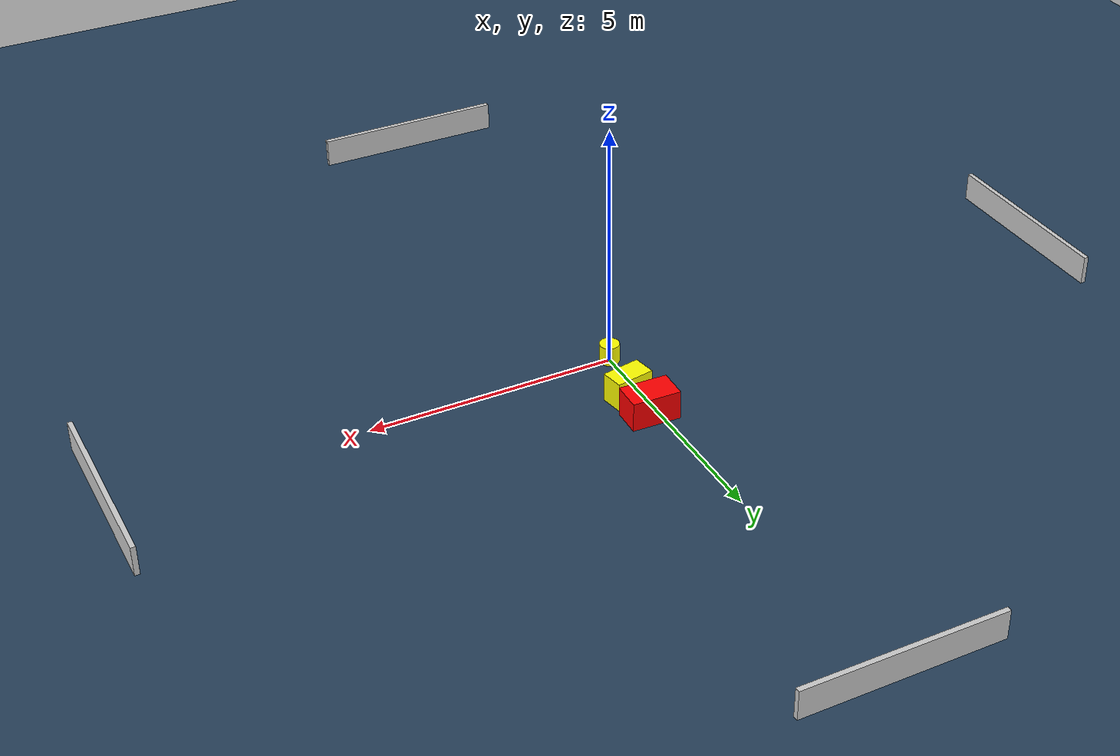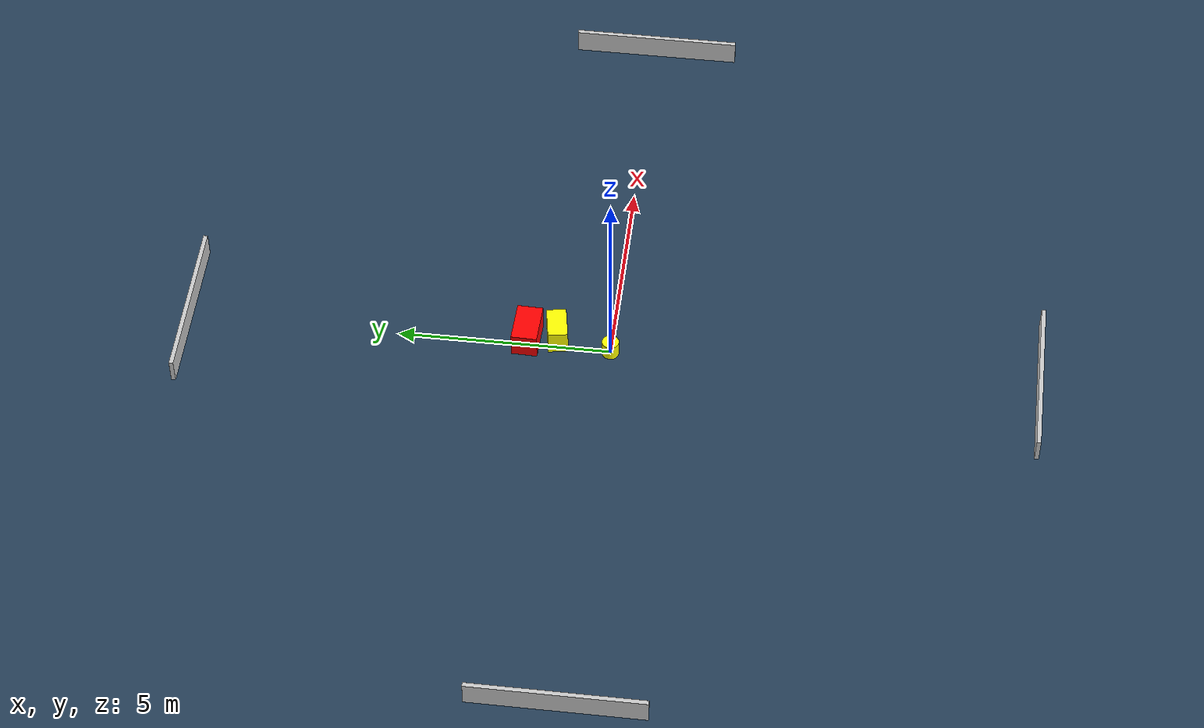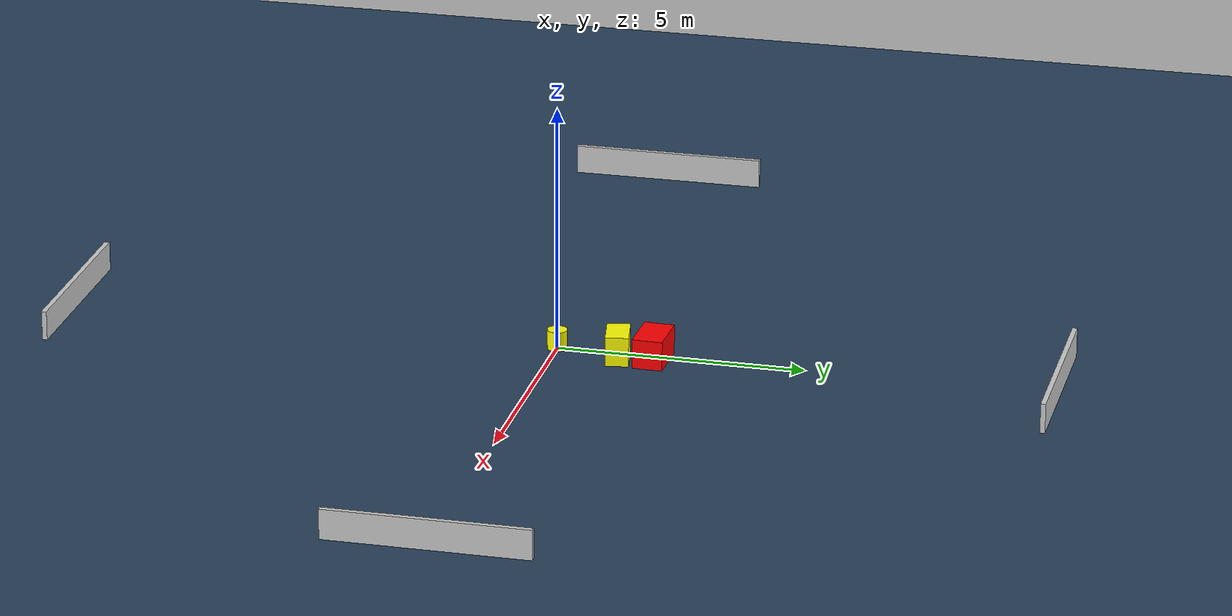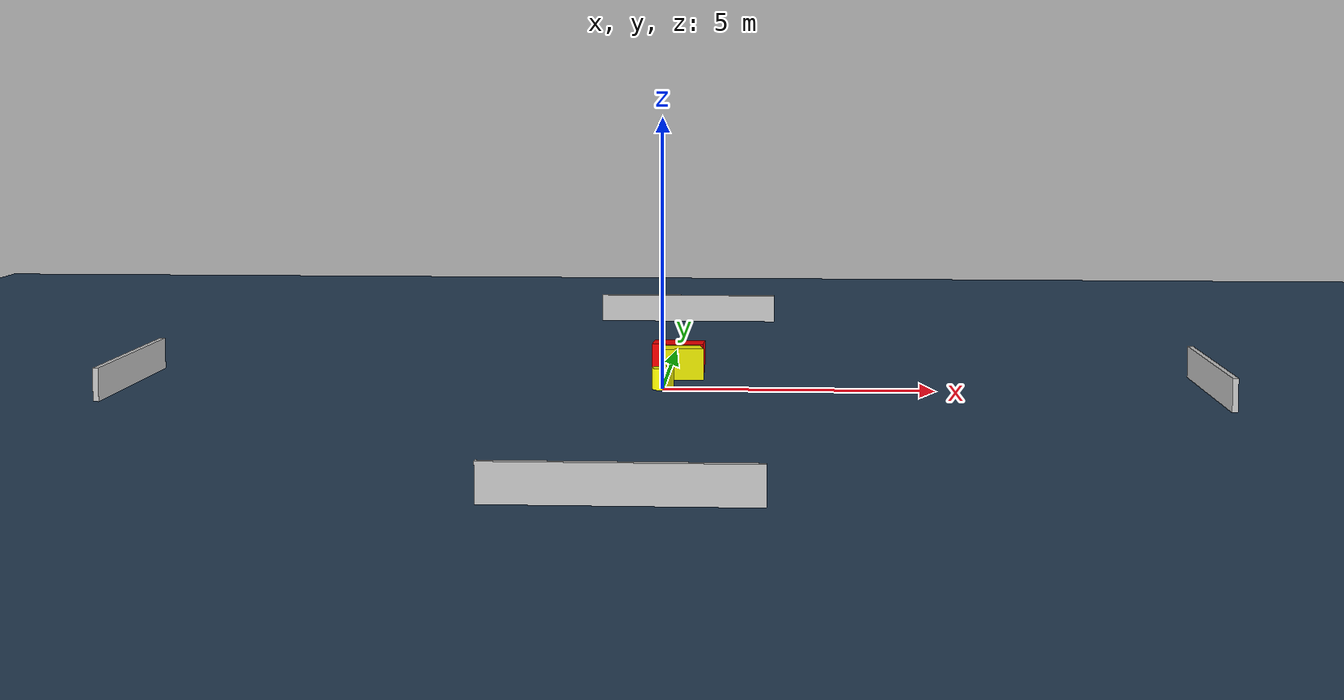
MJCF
<?xml version="1.0" ?>
<mujoco model="generated_environment">
  <option timestep="0.01" integrator="RK4" cone="elliptic"/>
  <default>
    <geom density="1"/>
  </default>
  <asset>
    <texture builtin="gradient" height="3072" name="skybox" rgb1="0.3 0.5 0.7" rgb2="0 0 0" type="skybox" width="512"/>
    <texture builtin="checker" height="300" name="groundplane" rgb1="0.2 0.3 0.4" rgb2="0.1 0.2 0.3" type="2d" width="300"/>
    <material name="groundplane" reflectance="0.2" texrepeat="5 5" texture="groundplane"/>
  </asset>
  <worldbody>
    <light dir="0 0 -1" directional="true" pos="0 0 1.5"/>
    <geom condim="3" friction="0.5 0.005 0.001" material="groundplane" name="floor" pos="0 0 0" size="0 0 0.05" type="plane"/>
    <body name="walls">
      <geom name="wall_1" condim="4" pos="-10.0 0.0 0.3" rgba="0.800000011920929 0.800000011920929 0.800000011920929 1.0" size="0.05 2.0 0.3" type="box"/>
      <geom name="wall_2" condim="4" pos="10.0 0.0 0.3" rgba="0.800000011920929 0.800000011920929 0.800000011920929 1.0" size="0.05 2.0 0.3" type="box"/>
      <geom name="wall_3" condim="4" pos="0.0 -10.0 0.3" rgba="0.800000011920929 0.800000011920929 0.800000011920929 1.0" size="2.0 0.05 0.3" type="box"/>
      <geom name="wall_4" condim="4" pos="0.0 10.0 0.3" rgba="0.800000011920929 0.800000011920929 0.800000011920929 1.0" size="2.0 0.05 0.3" type="box"/>
    </body>
    <body name="robot">
      <joint name="joint_x" type="slide" pos="0 0 0" axis="1 0 0"/>
      <joint name="joint_y" type="slide" pos="0 0 0" axis="0 1 0"/>
      <geom name="robot" type="cylinder" pos="0.0 0.0 0.2" size="0.2 0.2 0.0" mass="5.0" friction="1.0 0.005 0.0001" condim="4" rgba="1.0 1.0 0.0 1.0"/>
    </body>
    <body name="obstacle_1_movable">
      <geom name="obstacle_1_movable" condim="4" pos="0.28143332304078517 1.2924504866903619 0.3" euler="0 0 100.16959053996948" friction="0.0 0.005 0.001" rgba="1.0 1.0 0.0 1.0" size="0.2329524611206057 0.3920956092050647 0.3" type="box" mass="0.1"/>
      <joint type="free"/>
    </body>
    <body name="obstacle_2_static">
      <geom name="obstacle_2_static" condim="4" pos="0.19248319714261325 1.9880167298275073 0.3" euler="0 0 268.2588746596721" friction="0.0 0.005 0.001" rgba="1.0 0.0 0.0 1.0" size="0.30346315035060695 0.48985649548123184 0.3" type="box"/>
    </body>
  </worldbody>
  <actuator>
    <motor name="actuator_x" joint="joint_x" gear="1" ctrlrange="-1 1"/>
    <motor name="actuator_y" joint="joint_y" gear="1" ctrlrange="-1 1"/>
  </actuator>
</mujoco>
